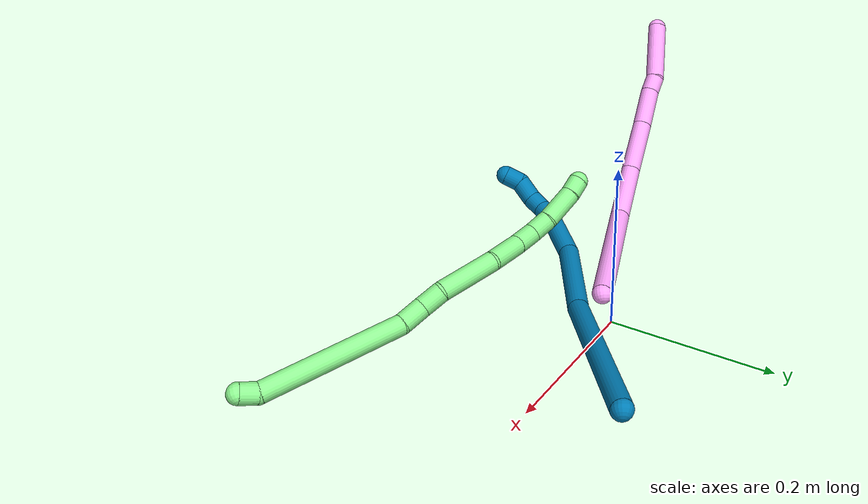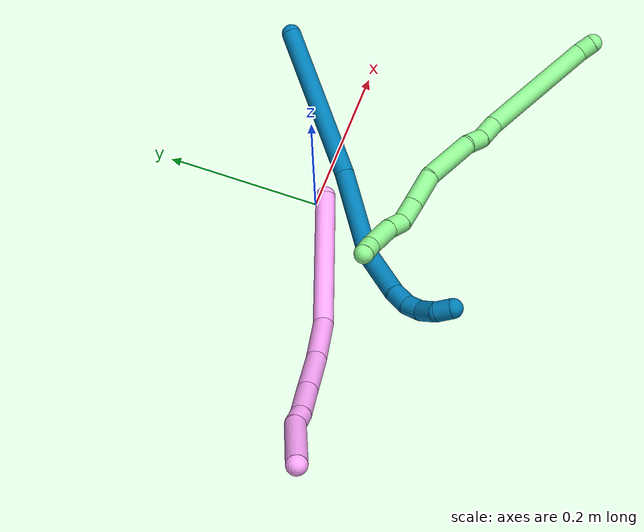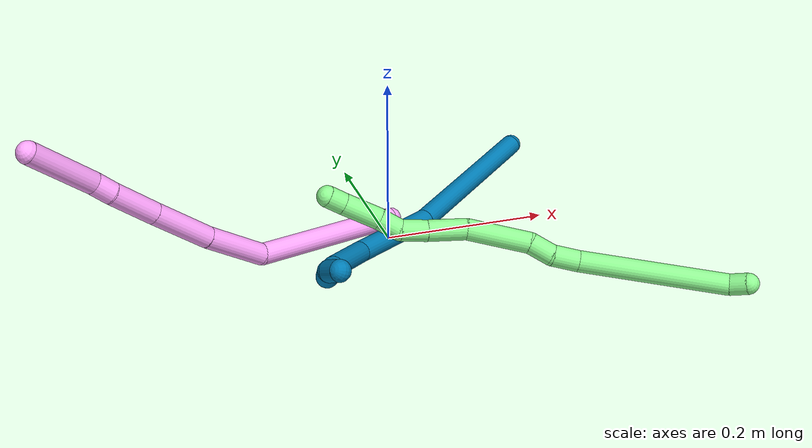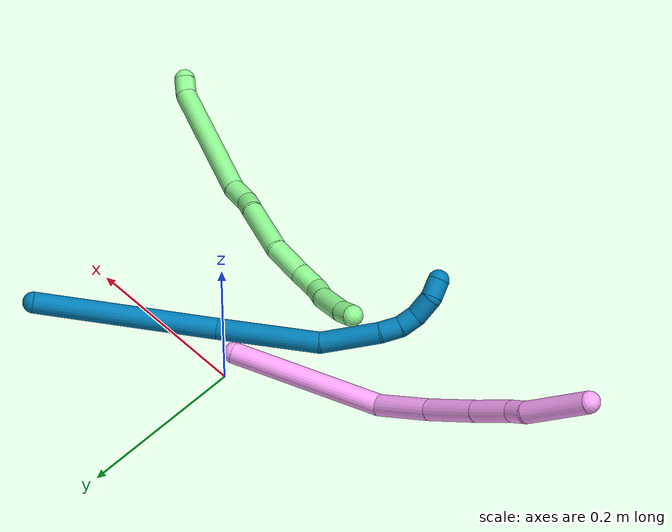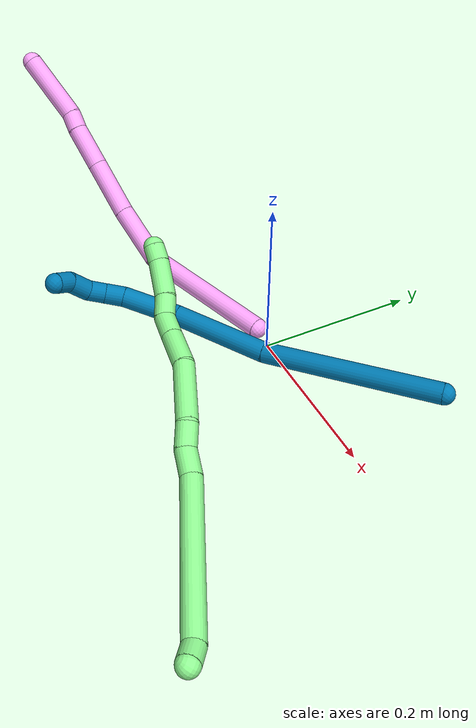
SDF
<sdf version="1.7">
 <world name="default">
  <model name="photoneo_s_sensor">
   <static>1</static>
   <pose>0 0 2 1.57079 1.57079 3.14159</pose>
   <link name="link">
    <inertial><mass>0.1</mass></inertial>
    <sensor name="sensor" type="depth">
     <update_rate>30</update_rate>
     <camera>
      <horizontal_fov>1.22</horizontal_fov>
      <image><width>1920</width><height>1200</height><format>B8G8R8</format></image>
      <clip><near>0.1</near><far>4</far></clip>
      <depth_camera><output>points</output></depth_camera>
     </camera>
     <plugin name="camera_plugin" filename="libgazebo_ros_depth_camera.so">
      <baseline>0.2</baseline>
      <alwaysOn>1</alwaysOn>
      <updateRate>0.0</updateRate>
      <cameraName>camera_ir</cameraName>
      <imageTopicName>/camera/color/image_raw</imageTopicName>
      <cameraInfoTopicName>/camera/color/camera_info</cameraInfoTopicName>
      <depthImageTopicName>/camera/depth/image_raw</depthImageTopicName>
      <depthImageCameraInfoTopicName>/camera/depth/camera_info</depthImageCameraInfoTopicName>
      <pointCloudTopicName>/camera/depth/points</pointCloudTopicName>
      <frameName>fr_optical</frameName>
      <pointCloudCutoff>0.1</pointCloudCutoff>
      <pointCloudCutoffMax>2.0</pointCloudCutoffMax>
      <distortionK1>0</distortionK1>
      <distortionK2>0</distortionK2>
      <distortionK3>0</distortionK3>
      <distortionT1>0</distortionT1>
      <distortionT2>0</distortionT2>
      <CxPrime>0</CxPrime>
      <Cx>0</Cx>
      <Cy>0</Cy>
      <focalLength>0</focalLength>
      <hackBaseline>0</hackBaseline>
     </plugin>
    </sensor>
   </link>
  </model>
  <model name="bin">
   <static>1</static>
   <link name="bottom">
    <collision name="collision-bottom">
     <pose>0 0 -0.01 0 -0 0</pose>
     <geometry><box><size>0.8 0.6 0.02</size></box></geometry>
     <surface>
      <friction><ode><mu>100</mu><mu2>100</mu2></ode></friction>
      <contact><collide_bitmask>65535</collide_bitmask></contact>
     </surface>
    </collision>
   </link>
   <link name="west_wall">
    <collision name="collision-west_wall">
     <pose>-0.41 0 0.1 0 -0 0</pose>
     <geometry><box><size>0.02 0.6 0.2</size></box></geometry>
     <surface>
      <friction><ode><mu>100</mu><mu2>100</mu2></ode></friction>
      <contact><collide_bitmask>65535</collide_bitmask></contact>
     </surface>
    </collision>
   </link>
   <link name="east_wall">
    <collision name="collision-east_wall">
     <pose>0.41 0 0.1 0 -0 0</pose>
     <geometry><box><size>0.02 0.6 0.2</size></box></geometry>
     <surface>
      <friction><ode><mu>100</mu><mu2>100</mu2></ode></friction>
      <contact><collide_bitmask>65535</collide_bitmask></contact>
     </surface>
    </collision>
   </link>
   <link name="south_wall">
    <collision name="collision-south_wall">
     <pose>0 -0.31 0.1 0 -0 0</pose>
     <geometry><box><size>0.8 0.02 0.2</size></box></geometry>
     <surface>
      <friction><ode><mu>100</mu><mu2>100</mu2></ode></friction>
      <contact><collide_bitmask>65535</collide_bitmask></contact>
     </surface>
    </collision>
   </link>
   <link name="north_wall">
    <collision name="collision-north_wall">
     <pose>0 0.31 0.1 0 -0 0</pose>
     <geometry><box><size>0.8 0.02 0.2</size></box></geometry>
     <surface>
      <friction><ode><mu>100</mu><mu2>100</mu2></ode></friction>
      <contact><collide_bitmask>65535</collide_bitmask></contact>
     </surface>
    </collision>
   </link>
  </model>
  <model name="4">
   <static>0</static>
   <link name="4">
    <collision name="collision-cylinder-e_1_1_4">
     <pose>-0.059046 -0.03296 0.061864 0.489532 -0.700036 -0.181857</pose>
     <geometry><cylinder><radius>0.0125</radius><length>0.183303</length></cylinder></geometry>
     <surface>
      <friction><ode><mu>1.16</mu><mu2>1.16</mu2><slip1>0</slip1><slip2>0</slip2></ode></friction>
      <contact><ode><kp>1e+06</kp><kd>1</kd><max_vel>0</max_vel><min_depth>0.001</min_depth></ode></contact>
     </surface>
    </collision>
    <visual name="visual-cylinder-e_1_1_4">
     <pose>-0.059046 -0.03296 0.061864 0.489532 -0.700036 -0.181857</pose>
     <geometry><cylinder><radius>0.0125</radius><length>0.183303</length></cylinder></geometry>
     <material><ambient>1 0.65098 0.996078 1</ambient></material>
    </visual>
    <collision name="collision-cylinder-e_2_4_5">
     <pose>-0.134611 -0.064598 0.157959 -0.038619 -0.449322 0.008826</pose>
     <geometry><cylinder><radius>0.0125</radius><length>0.076062</length></cylinder></geometry>
     <surface>
      <friction><ode><mu>1.16</mu><mu2>1.16</mu2><slip1>0</slip1><slip2>0</slip2></ode></friction>
      <contact><ode><kp>1e+06</kp><kd>1</kd><max_vel>0</max_vel><min_depth>0.001</min_depth></ode></contact>
     </surface>
    </collision>
    <visual name="visual-cylinder-e_2_4_5">
     <pose>-0.134611 -0.064598 0.157959 -0.038619 -0.449322 0.008826</pose>
     <geometry><cylinder><radius>0.0125</radius><length>0.076062</length></cylinder></geometry>
     <material><ambient>1 0.65098 0.996078 1</ambient></material>
    </visual>
    <collision name="collision-cylinder-e_3_5_6">
     <pose>-0.165321 -0.058872 0.225776 -0.130377 -0.396721 0.026242</pose>
     <geometry><cylinder><radius>0.0125</radius><length>0.073453</length></cylinder></geometry>
     <surface>
      <friction><ode><mu>1.16</mu><mu2>1.16</mu2><slip1>0</slip1><slip2>0</slip2></ode></friction>
      <contact><ode><kp>1e+06</kp><kd>1</kd><max_vel>0</max_vel><min_depth>0.001</min_depth></ode></contact>
     </surface>
    </collision>
    <visual name="visual-cylinder-e_3_5_6">
     <pose>-0.165321 -0.058872 0.225776 -0.130377 -0.396721 0.026242</pose>
     <geometry><cylinder><radius>0.0125</radius><length>0.073453</length></cylinder></geometry>
     <material><ambient>1 0.65098 0.996078 1</ambient></material>
    </visual>
    <collision name="collision-cylinder-e_4_6_7">
     <pose>-0.189696 -0.051015 0.285163 -0.133055 -0.372938 0.025138</pose>
     <geometry><cylinder><radius>0.0125</radius><length>0.055903</length></cylinder></geometry>
     <surface>
      <friction><ode><mu>1.16</mu><mu2>1.16</mu2><slip1>0</slip1><slip2>0</slip2></ode></friction>
      <contact><ode><kp>1e+06</kp><kd>1</kd><max_vel>0</max_vel><min_depth>0.001</min_depth></ode></contact>
     </surface>
    </collision>
    <visual name="visual-cylinder-e_4_6_7">
     <pose>-0.189696 -0.051015 0.285163 -0.133055 -0.372938 0.025138</pose>
     <geometry><cylinder><radius>0.0125</radius><length>0.055903</length></cylinder></geometry>
     <material><ambient>1 0.65098 0.996078 1</ambient></material>
    </visual>
    <collision name="collision-cylinder-e_5_7_8">
     <pose>-0.204716 -0.044726 0.321511 -0.262614 -0.416756 0.055836</pose>
     <geometry><cylinder><radius>0.0125</radius><length>0.023889</length></cylinder></geometry>
     <surface>
      <friction><ode><mu>1.16</mu><mu2>1.16</mu2><slip1>0</slip1><slip2>0</slip2></ode></friction>
      <contact><ode><kp>1e+06</kp><kd>1</kd><max_vel>0</max_vel><min_depth>0.001</min_depth></ode></contact>
     </surface>
    </collision>
    <visual name="visual-cylinder-e_5_7_8">
     <pose>-0.204716 -0.044726 0.321511 -0.262614 -0.416756 0.055836</pose>
     <geometry><cylinder><radius>0.0125</radius><length>0.023889</length></cylinder></geometry>
     <material><ambient>1 0.65098 0.996078 1</ambient></material>
    </visual>
    <collision name="collision-cylinder-e_6_8_2">
     <pose>-0.220714 -0.040903 0.374292 -0.023372 -0.258335 0.003036</pose>
     <geometry><cylinder><radius>0.0125</radius><length>0.087389</length></cylinder></geometry>
     <surface>
      <friction><ode><mu>1.16</mu><mu2>1.16</mu2><slip1>0</slip1><slip2>0</slip2></ode></friction>
      <contact><ode><kp>1e+06</kp><kd>1</kd><max_vel>0</max_vel><min_depth>0.001</min_depth></ode></contact>
     </surface>
    </collision>
    <visual name="visual-cylinder-e_6_8_2">
     <pose>-0.220714 -0.040903 0.374292 -0.023372 -0.258335 0.003036</pose>
     <geometry><cylinder><radius>0.0125</radius><length>0.087389</length></cylinder></geometry>
     <material><ambient>1 0.65098 0.996078 1</ambient></material>
    </visual>
    <collision name="collision-sphere-2">
     <pose>-0.231876 -0.039916 0.416525 0 -0 0</pose>
     <geometry><sphere><radius>0.0125</radius></sphere></geometry>
     <surface>
      <friction><ode><mu>1.16</mu><mu2>1.16</mu2><slip1>0</slip1><slip2>0</slip2></ode></friction>
      <contact><ode><kp>1e+06</kp><kd>1</kd><max_vel>0</max_vel><min_depth>0.001</min_depth></ode></contact>
     </surface>
    </collision>
    <visual name="visual-sphere-2">
     <pose>-0.231876 -0.039916 0.416525 0 -0 0</pose>
     <geometry><sphere><radius>0.0125</radius></sphere></geometry>
     <material><ambient>1 0.65098 0.996078 1</ambient></material>
    </visual>
    <collision name="collision-sphere-4">
     <pose>-0.118092 -0.065921 0.123728 0 -0 0</pose>
     <geometry><sphere><radius>0.0125</radius></sphere></geometry>
     <surface>
      <friction><ode><mu>1.16</mu><mu2>1.16</mu2><slip1>0</slip1><slip2>0</slip2></ode></friction>
      <contact><ode><kp>1e+06</kp><kd>1</kd><max_vel>0</max_vel><min_depth>0.001</min_depth></ode></contact>
     </surface>
    </collision>
    <visual name="visual-sphere-4">
     <pose>-0.118092 -0.065921 0.123728 0 -0 0</pose>
     <geometry><sphere><radius>0.0125</radius></sphere></geometry>
     <material><ambient>1 0.65098 0.996078 1</ambient></material>
    </visual>
    <collision name="collision-sphere-1">
     <geometry><sphere><radius>0.0125</radius></sphere></geometry>
     <surface>
      <friction><ode><mu>1.16</mu><mu2>1.16</mu2><slip1>0</slip1><slip2>0</slip2></ode></friction>
      <contact><ode><kp>1e+06</kp><kd>1</kd><max_vel>0</max_vel><min_depth>0.001</min_depth></ode></contact>
     </surface>
    </collision>
    <visual name="visual-sphere-1">
     <geometry><sphere><radius>0.0125</radius></sphere></geometry>
     <material><ambient>1 0.65098 0.996078 1</ambient></material>
    </visual>
    <collision name="collision-sphere-8">
     <pose>-0.209551 -0.04189 0.332059 0 -0 0</pose>
     <geometry><sphere><radius>0.0125</radius></sphere></geometry>
     <surface>
      <friction><ode><mu>1.16</mu><mu2>1.16</mu2><slip1>0</slip1><slip2>0</slip2></ode></friction>
      <contact><ode><kp>1e+06</kp><kd>1</kd><max_vel>0</max_vel><min_depth>0.001</min_depth></ode></contact>
     </surface>
    </collision>
    <visual name="visual-sphere-8">
     <pose>-0.209551 -0.04189 0.332059 0 -0 0</pose>
     <geometry><sphere><radius>0.0125</radius></sphere></geometry>
     <material><ambient>1 0.65098 0.996078 1</ambient></material>
    </visual>
    <collision name="collision-sphere-5">
     <pose>-0.15113 -0.063276 0.19219 0 -0 0</pose>
     <geometry><sphere><radius>0.0125</radius></sphere></geometry>
     <surface>
      <friction><ode><mu>1.16</mu><mu2>1.16</mu2><slip1>0</slip1><slip2>0</slip2></ode></friction>
      <contact><ode><kp>1e+06</kp><kd>1</kd><max_vel>0</max_vel><min_depth>0.001</min_depth></ode></contact>
     </surface>
    </collision>
    <visual name="visual-sphere-5">
     <pose>-0.15113 -0.063276 0.19219 0 -0 0</pose>
     <geometry><sphere><radius>0.0125</radius></sphere></geometry>
     <material><ambient>1 0.65098 0.996078 1</ambient></material>
    </visual>
    <collision name="collision-sphere-6">
     <pose>-0.179512 -0.054468 0.259363 0 -0 0</pose>
     <geometry><sphere><radius>0.0125</radius></sphere></geometry>
     <surface>
      <friction><ode><mu>1.16</mu><mu2>1.16</mu2><slip1>0</slip1><slip2>0</slip2></ode></friction>
      <contact><ode><kp>1e+06</kp><kd>1</kd><max_vel>0</max_vel><min_depth>0.001</min_depth></ode></contact>
     </surface>
    </collision>
    <visual name="visual-sphere-6">
     <pose>-0.179512 -0.054468 0.259363 0 -0 0</pose>
     <geometry><sphere><radius>0.0125</radius></sphere></geometry>
     <material><ambient>1 0.65098 0.996078 1</ambient></material>
    </visual>
    <collision name="collision-sphere-7">
     <pose>-0.199881 -0.047561 0.310963 0 -0 0</pose>
     <geometry><sphere><radius>0.0125</radius></sphere></geometry>
     <surface>
      <friction><ode><mu>1.16</mu><mu2>1.16</mu2><slip1>0</slip1><slip2>0</slip2></ode></friction>
      <contact><ode><kp>1e+06</kp><kd>1</kd><max_vel>0</max_vel><min_depth>0.001</min_depth></ode></contact>
     </surface>
    </collision>
    <visual name="visual-sphere-7">
     <pose>-0.199881 -0.047561 0.310963 0 -0 0</pose>
     <geometry><sphere><radius>0.0125</radius></sphere></geometry>
     <material><ambient>1 0.65098 0.996078 1</ambient></material>
    </visual>
    <inertial>
     <pose>-0.135977 -0.045549 0.19254 0 -0 0</pose>
     <mass>0.5</mass>
     <inertia>
      <ixx>0.000447</ixx>
      <ixy>0</ixy>
      <ixz>0</ixz>
      <iyy>0.00056</iyy>
      <iyz>0</iyz>
      <izz>0.000598</izz>
     </inertia>
    </inertial>
   </link>
   <pose>-0.001542 -0.014322 0.03437 0.678219 -0.362089 -0.43928</pose>
  </model>
  <model name="9">
   <static>0</static>
   <link name="9">
    <collision name="collision-cylinder-e_1_1_4">
     <pose>-0.017677 -0.056309 0.088949 0.564366 -0.166365 -0.048335</pose>
     <geometry><cylinder><radius>0.0125</radius><length>0.213496</length></cylinder></geometry>
     <surface>
      <friction><ode><mu>1.16</mu><mu2>1.16</mu2><slip1>0</slip1><slip2>0</slip2></ode></friction>
      <contact><ode><kp>1e+06</kp><kd>1</kd><max_vel>0</max_vel><min_depth>0.001</min_depth></ode></contact>
     </surface>
    </collision>
    <visual name="visual-cylinder-e_1_1_4">
     <pose>-0.017677 -0.056309 0.088949 0.564366 -0.166365 -0.048335</pose>
     <geometry><cylinder><radius>0.0125</radius><length>0.213496</length></cylinder></geometry>
     <material><ambient>0 0.490196 0.709804 1</ambient></material>
    </visual>
    <collision name="collision-cylinder-e_2_4_5">
     <pose>-0.046083 -0.13515 0.233016 0.388054 -0.178261 -0.035118</pose>
     <geometry><cylinder><radius>0.0125</radius><length>0.121008</length></cylinder></geometry>
     <surface>
      <friction><ode><mu>1.16</mu><mu2>1.16</mu2><slip1>0</slip1><slip2>0</slip2></ode></friction>
      <contact><ode><kp>1e+06</kp><kd>1</kd><max_vel>0</max_vel><min_depth>0.001</min_depth></ode></contact>
     </surface>
    </collision>
    <visual name="visual-cylinder-e_2_4_5">
     <pose>-0.046083 -0.13515 0.233016 0.388054 -0.178261 -0.035118</pose>
     <geometry><cylinder><radius>0.0125</radius><length>0.121008</length></cylinder></geometry>
     <material><ambient>0 0.490196 0.709804 1</ambient></material>
    </visual>
    <collision name="collision-cylinder-e_3_5_6">
     <pose>-0.052684 -0.170281 0.320446 0.371818 0.118448 0.022303</pose>
     <geometry><cylinder><radius>0.0125</radius><length>0.069854</length></cylinder></geometry>
     <surface>
      <friction><ode><mu>1.16</mu><mu2>1.16</mu2><slip1>0</slip1><slip2>0</slip2></ode></friction>
      <contact><ode><kp>1e+06</kp><kd>1</kd><max_vel>0</max_vel><min_depth>0.001</min_depth></ode></contact>
     </surface>
    </collision>
    <visual name="visual-cylinder-e_3_5_6">
     <pose>-0.052684 -0.170281 0.320446 0.371818 0.118448 0.022303</pose>
     <geometry><cylinder><radius>0.0125</radius><length>0.069854</length></cylinder></geometry>
     <material><ambient>0 0.490196 0.709804 1</ambient></material>
    </visual>
    <collision name="collision-cylinder-e_4_6_7">
     <pose>-0.045424 -0.188552 0.3631 0.501545 0.259638 0.066861</pose>
     <geometry><cylinder><radius>0.0125</radius><length>0.024407</length></cylinder></geometry>
     <surface>
      <friction><ode><mu>1.16</mu><mu2>1.16</mu2><slip1>0</slip1><slip2>0</slip2></ode></friction>
      <contact><ode><kp>1e+06</kp><kd>1</kd><max_vel>0</max_vel><min_depth>0.001</min_depth></ode></contact>
     </surface>
    </collision>
    <visual name="visual-cylinder-e_4_6_7">
     <pose>-0.045424 -0.188552 0.3631 0.501545 0.259638 0.066861</pose>
     <geometry><cylinder><radius>0.0125</radius><length>0.024407</length></cylinder></geometry>
     <material><ambient>0 0.490196 0.709804 1</ambient></material>
    </visual>
    <collision name="collision-cylinder-e_5_7_8">
     <pose>-0.036355 -0.197943 0.381877 0.415419 0.572058 0.123801</pose>
     <geometry><cylinder><radius>0.0125</radius><length>0.02193</length></cylinder></geometry>
     <surface>
      <friction><ode><mu>1.16</mu><mu2>1.16</mu2><slip1>0</slip1><slip2>0</slip2></ode></friction>
      <contact><ode><kp>1e+06</kp><kd>1</kd><max_vel>0</max_vel><min_depth>0.001</min_depth></ode></contact>
     </surface>
    </collision>
    <visual name="visual-cylinder-e_5_7_8">
     <pose>-0.036355 -0.197943 0.381877 0.415419 0.572058 0.123801</pose>
     <geometry><cylinder><radius>0.0125</radius><length>0.02193</length></cylinder></geometry>
     <material><ambient>0 0.490196 0.709804 1</ambient></material>
    </visual>
    <collision name="collision-cylinder-e_6_8_9">
     <pose>-0.02112 -0.201724 0.400325 0.005958 0.748486 0.00234</pose>
     <geometry><cylinder><radius>0.0125</radius><length>0.027329</length></cylinder></geometry>
     <surface>
      <friction><ode><mu>1.16</mu><mu2>1.16</mu2><slip1>0</slip1><slip2>0</slip2></ode></friction>
      <contact><ode><kp>1e+06</kp><kd>1</kd><max_vel>0</max_vel><min_depth>0.001</min_depth></ode></contact>
     </surface>
    </collision>
    <visual name="visual-cylinder-e_6_8_9">
     <pose>-0.02112 -0.201724 0.400325 0.005958 0.748486 0.00234</pose>
     <geometry><cylinder><radius>0.0125</radius><length>0.027329</length></cylinder></geometry>
     <material><ambient>0 0.490196 0.709804 1</ambient></material>
    </visual>
    <collision name="collision-cylinder-e_7_9_2">
     <pose>-0.001796 -0.20438 0.414011 0.615192 1.14891 0.405595</pose>
     <geometry><cylinder><radius>0.0125</radius><length>0.021976</length></cylinder></geometry>
     <surface>
      <friction><ode><mu>1.16</mu><mu2>1.16</mu2><slip1>0</slip1><slip2>0</slip2></ode></friction>
      <contact><ode><kp>1e+06</kp><kd>1</kd><max_vel>0</max_vel><min_depth>0.001</min_depth></ode></contact>
     </surface>
    </collision>
    <visual name="visual-cylinder-e_7_9_2">
     <pose>-0.001796 -0.20438 0.414011 0.615192 1.14891 0.405595</pose>
     <geometry><cylinder><radius>0.0125</radius><length>0.021976</length></cylinder></geometry>
     <material><ambient>0 0.490196 0.709804 1</ambient></material>
    </visual>
    <collision name="collision-sphere-2">
     <pose>0.008228 -0.206976 0.417686 0 -0 0</pose>
     <geometry><sphere><radius>0.0125</radius></sphere></geometry>
     <surface>
      <friction><ode><mu>1.16</mu><mu2>1.16</mu2><slip1>0</slip1><slip2>0</slip2></ode></friction>
      <contact><ode><kp>1e+06</kp><kd>1</kd><max_vel>0</max_vel><min_depth>0.001</min_depth></ode></contact>
     </surface>
    </collision>
    <visual name="visual-sphere-2">
     <pose>0.008228 -0.206976 0.417686 0 -0 0</pose>
     <geometry><sphere><radius>0.0125</radius></sphere></geometry>
     <material><ambient>0 0.490196 0.709804 1</ambient></material>
    </visual>
    <collision name="collision-sphere-9">
     <pose>-0.01182 -0.201783 0.410337 0 -0 0</pose>
     <geometry><sphere><radius>0.0125</radius></sphere></geometry>
     <surface>
      <friction><ode><mu>1.16</mu><mu2>1.16</mu2><slip1>0</slip1><slip2>0</slip2></ode></friction>
      <contact><ode><kp>1e+06</kp><kd>1</kd><max_vel>0</max_vel><min_depth>0.001</min_depth></ode></contact>
     </surface>
    </collision>
    <visual name="visual-sphere-9">
     <pose>-0.01182 -0.201783 0.410337 0 -0 0</pose>
     <geometry><sphere><radius>0.0125</radius></sphere></geometry>
     <material><ambient>0 0.490196 0.709804 1</ambient></material>
    </visual>
    <collision name="collision-sphere-4">
     <pose>-0.035355 -0.112618 0.177898 0 -0 0</pose>
     <geometry><sphere><radius>0.0125</radius></sphere></geometry>
     <surface>
      <friction><ode><mu>1.16</mu><mu2>1.16</mu2><slip1>0</slip1><slip2>0</slip2></ode></friction>
      <contact><ode><kp>1e+06</kp><kd>1</kd><max_vel>0</max_vel><min_depth>0.001</min_depth></ode></contact>
     </surface>
    </collision>
    <visual name="visual-sphere-4">
     <pose>-0.035355 -0.112618 0.177898 0 -0 0</pose>
     <geometry><sphere><radius>0.0125</radius></sphere></geometry>
     <material><ambient>0 0.490196 0.709804 1</ambient></material>
    </visual>
    <collision name="collision-sphere-1">
     <geometry><sphere><radius>0.0125</radius></sphere></geometry>
     <surface>
      <friction><ode><mu>1.16</mu><mu2>1.16</mu2><slip1>0</slip1><slip2>0</slip2></ode></friction>
      <contact><ode><kp>1e+06</kp><kd>1</kd><max_vel>0</max_vel><min_depth>0.001</min_depth></ode></contact>
     </surface>
    </collision>
    <visual name="visual-sphere-1">
     <geometry><sphere><radius>0.0125</radius></sphere></geometry>
     <material><ambient>0 0.490196 0.709804 1</ambient></material>
    </visual>
    <collision name="collision-sphere-8">
     <pose>-0.030419 -0.201664 0.390313 0 -0 0</pose>
     <geometry><sphere><radius>0.0125</radius></sphere></geometry>
     <surface>
      <friction><ode><mu>1.16</mu><mu2>1.16</mu2><slip1>0</slip1><slip2>0</slip2></ode></friction>
      <contact><ode><kp>1e+06</kp><kd>1</kd><max_vel>0</max_vel><min_depth>0.001</min_depth></ode></contact>
     </surface>
    </collision>
    <visual name="visual-sphere-8">
     <pose>-0.030419 -0.201664 0.390313 0 -0 0</pose>
     <geometry><sphere><radius>0.0125</radius></sphere></geometry>
     <material><ambient>0 0.490196 0.709804 1</ambient></material>
    </visual>
    <collision name="collision-sphere-5">
     <pose>-0.056812 -0.157681 0.288134 0 -0 0</pose>
     <geometry><sphere><radius>0.0125</radius></sphere></geometry>
     <surface>
      <friction><ode><mu>1.16</mu><mu2>1.16</mu2><slip1>0</slip1><slip2>0</slip2></ode></friction>
      <contact><ode><kp>1e+06</kp><kd>1</kd><max_vel>0</max_vel><min_depth>0.001</min_depth></ode></contact>
     </surface>
    </collision>
    <visual name="visual-sphere-5">
     <pose>-0.056812 -0.157681 0.288134 0 -0 0</pose>
     <geometry><sphere><radius>0.0125</radius></sphere></geometry>
     <material><ambient>0 0.490196 0.709804 1</ambient></material>
    </visual>
    <collision name="collision-sphere-6">
     <pose>-0.048557 -0.182881 0.352759 0 -0 0</pose>
     <geometry><sphere><radius>0.0125</radius></sphere></geometry>
     <surface>
      <friction><ode><mu>1.16</mu><mu2>1.16</mu2><slip1>0</slip1><slip2>0</slip2></ode></friction>
      <contact><ode><kp>1e+06</kp><kd>1</kd><max_vel>0</max_vel><min_depth>0.001</min_depth></ode></contact>
     </surface>
    </collision>
    <visual name="visual-sphere-6">
     <pose>-0.048557 -0.182881 0.352759 0 -0 0</pose>
     <geometry><sphere><radius>0.0125</radius></sphere></geometry>
     <material><ambient>0 0.490196 0.709804 1</ambient></material>
    </visual>
    <collision name="collision-sphere-7">
     <pose>-0.042291 -0.194223 0.373442 0 -0 0</pose>
     <geometry><sphere><radius>0.0125</radius></sphere></geometry>
     <surface>
      <friction><ode><mu>1.16</mu><mu2>1.16</mu2><slip1>0</slip1><slip2>0</slip2></ode></friction>
      <contact><ode><kp>1e+06</kp><kd>1</kd><max_vel>0</max_vel><min_depth>0.001</min_depth></ode></contact>
     </surface>
    </collision>
    <visual name="visual-sphere-7">
     <pose>-0.042291 -0.194223 0.373442 0 -0 0</pose>
     <geometry><sphere><radius>0.0125</radius></sphere></geometry>
     <material><ambient>0 0.490196 0.709804 1</ambient></material>
    </visual>
    <inertial>
     <pose>-0.031106 -0.118436 0.213694 0 -0 0</pose>
     <mass>0.5</mass>
     <inertia>
      <ixx>0.000952</ixx>
      <ixy>0</ixy>
      <ixz>0</ixz>
      <iyy>0.000814</iyy>
      <iyz>0</iyz>
      <izz>0.000689</izz>
     </inertia>
    </inertial>
   </link>
   <pose>0.202646 0.109104 0.051986 1.02517 -0.503263 -0.747682</pose>
  </model>
  <model name="13">
   <static>0</static>
   <link name="13">
    <collision name="collision-cylinder-e_1_1_4">
     <pose>-0.009256 0.00516 0.002078 -1.18788 -1.02962 0.729784</pose>
     <geometry><cylinder><radius>0.0125</radius><length>0.021597</length></cylinder></geometry>
     <surface>
      <friction><ode><mu>1.16</mu><mu2>1.16</mu2><slip1>0</slip1><slip2>0</slip2></ode></friction>
      <contact><ode><kp>1e+06</kp><kd>1</kd><max_vel>0</max_vel><min_depth>0.001</min_depth></ode></contact>
     </surface>
    </collision>
    <visual name="visual-cylinder-e_1_1_4">
     <pose>-0.009256 0.00516 0.002078 -1.18788 -1.02962 0.729784</pose>
     <geometry><cylinder><radius>0.0125</radius><length>0.021597</length></cylinder></geometry>
     <material><ambient>0.564706 0.984314 0.572549 1</ambient></material>
    </visual>
    <collision name="collision-cylinder-e_2_4_5">
     <pose>-0.097601 0.040486 -0.015214 -2.14163 -1.14522 1.73563</pose>
     <geometry><cylinder><radius>0.0125</radius><length>0.173672</length></cylinder></geometry>
     <surface>
      <friction><ode><mu>1.16</mu><mu2>1.16</mu2><slip1>0</slip1><slip2>0</slip2></ode></friction>
      <contact><ode><kp>1e+06</kp><kd>1</kd><max_vel>0</max_vel><min_depth>0.001</min_depth></ode></contact>
     </surface>
    </collision>
    <visual name="visual-cylinder-e_2_4_5">
     <pose>-0.097601 0.040486 -0.015214 -2.14163 -1.14522 1.73563</pose>
     <geometry><cylinder><radius>0.0125</radius><length>0.173672</length></cylinder></geometry>
     <material><ambient>0.564706 0.984314 0.572549 1</ambient></material>
    </visual>
    <collision name="collision-cylinder-e_3_5_6">
     <pose>-0.190132 0.075394 -0.041752 -2.55705 -1.00189 2.13661</pose>
     <geometry><cylinder><radius>0.0125</radius><length>0.031907</length></cylinder></geometry>
     <surface>
      <friction><ode><mu>1.16</mu><mu2>1.16</mu2><slip1>0</slip1><slip2>0</slip2></ode></friction>
      <contact><ode><kp>1e+06</kp><kd>1</kd><max_vel>0</max_vel><min_depth>0.001</min_depth></ode></contact>
     </surface>
    </collision>
    <visual name="visual-cylinder-e_3_5_6">
     <pose>-0.190132 0.075394 -0.041752 -2.55705 -1.00189 2.13661</pose>
     <geometry><cylinder><radius>0.0125</radius><length>0.031907</length></cylinder></geometry>
     <material><ambient>0.564706 0.984314 0.572549 1</ambient></material>
    </visual>
    <collision name="collision-cylinder-e_4_6_7">
     <pose>-0.216958 0.080175 -0.054088 -3.1341 -1.20229 3.13067</pose>
     <geometry><cylinder><radius>0.0125</radius><length>0.028697</length></cylinder></geometry>
     <surface>
      <friction><ode><mu>1.16</mu><mu2>1.16</mu2><slip1>0</slip1><slip2>0</slip2></ode></friction>
      <contact><ode><kp>1e+06</kp><kd>1</kd><max_vel>0</max_vel><min_depth>0.001</min_depth></ode></contact>
     </surface>
    </collision>
    <visual name="visual-cylinder-e_4_6_7">
     <pose>-0.216958 0.080175 -0.054088 -3.1341 -1.20229 3.13067</pose>
     <geometry><cylinder><radius>0.0125</radius><length>0.028697</length></cylinder></geometry>
     <material><ambient>0.564706 0.984314 0.572549 1</ambient></material>
    </visual>
    <collision name="collision-cylinder-e_5_7_8">
     <pose>-0.263992 0.091199 -0.070451 -2.36563 -1.13462 2.00096</pose>
     <geometry><cylinder><radius>0.0125</radius><length>0.074249</length></cylinder></geometry>
     <surface>
      <friction><ode><mu>1.16</mu><mu2>1.16</mu2><slip1>0</slip1><slip2>0</slip2></ode></friction>
      <contact><ode><kp>1e+06</kp><kd>1</kd><max_vel>0</max_vel><min_depth>0.001</min_depth></ode></contact>
     </surface>
    </collision>
    <visual name="visual-cylinder-e_5_7_8">
     <pose>-0.263992 0.091199 -0.070451 -2.36563 -1.13462 2.00096</pose>
     <geometry><cylinder><radius>0.0125</radius><length>0.074249</length></cylinder></geometry>
     <material><ambient>0.564706 0.984314 0.572549 1</ambient></material>
    </visual>
    <collision name="collision-cylinder-e_6_8_9">
     <pose>-0.314957 0.114298 -0.090727 -2.21412 -0.852372 1.47425</pose>
     <geometry><cylinder><radius>0.0125</radius><length>0.046004</length></cylinder></geometry>
     <surface>
      <friction><ode><mu>1.16</mu><mu2>1.16</mu2><slip1>0</slip1><slip2>0</slip2></ode></friction>
      <contact><ode><kp>1e+06</kp><kd>1</kd><max_vel>0</max_vel><min_depth>0.001</min_depth></ode></contact>
     </surface>
    </collision>
    <visual name="visual-cylinder-e_6_8_9">
     <pose>-0.314957 0.114298 -0.090727 -2.21412 -0.852372 1.47425</pose>
     <geometry><cylinder><radius>0.0125</radius><length>0.046004</length></cylinder></geometry>
     <material><ambient>0.564706 0.984314 0.572549 1</ambient></material>
    </visual>
    <collision name="collision-cylinder-e_7_9_10">
     <pose>-0.344086 0.133834 -0.106512 -2.30531 -0.868254 1.61326</pose>
     <geometry><cylinder><radius>0.0125</radius><length>0.030952</length></cylinder></geometry>
     <surface>
      <friction><ode><mu>1.16</mu><mu2>1.16</mu2><slip1>0</slip1><slip2>0</slip2></ode></friction>
      <contact><ode><kp>1e+06</kp><kd>1</kd><max_vel>0</max_vel><min_depth>0.001</min_depth></ode></contact>
     </surface>
    </collision>
    <visual name="visual-cylinder-e_7_9_10">
     <pose>-0.344086 0.133834 -0.106512 -2.30531 -0.868254 1.61326</pose>
     <geometry><cylinder><radius>0.0125</radius><length>0.030952</length></cylinder></geometry>
     <material><ambient>0.564706 0.984314 0.572549 1</ambient></material>
    </visual>
    <collision name="collision-cylinder-e_8_10_11">
     <pose>-0.368245 0.14149 -0.118383 -3.09625 -1.17396 3.07345</pose>
     <geometry><cylinder><radius>0.0125</radius><length>0.026775</length></cylinder></geometry>
     <surface>
      <friction><ode><mu>1.16</mu><mu2>1.16</mu2><slip1>0</slip1><slip2>0</slip2></ode></friction>
      <contact><ode><kp>1e+06</kp><kd>1</kd><max_vel>0</max_vel><min_depth>0.001</min_depth></ode></contact>
     </surface>
    </collision>
    <visual name="visual-cylinder-e_8_10_11">
     <pose>-0.368245 0.14149 -0.118383 -3.09625 -1.17396 3.07345</pose>
     <geometry><cylinder><radius>0.0125</radius><length>0.026775</length></cylinder></geometry>
     <material><ambient>0.564706 0.984314 0.572549 1</ambient></material>
    </visual>
    <collision name="collision-cylinder-e_9_11_12">
     <pose>-0.39943 0.144508 -0.135774 -2.91769 -0.98365 2.7279</pose>
     <geometry><cylinder><radius>0.0125</radius><length>0.045255</length></cylinder></geometry>
     <surface>
      <friction><ode><mu>1.16</mu><mu2>1.16</mu2><slip1>0</slip1><slip2>0</slip2></ode></friction>
      <contact><ode><kp>1e+06</kp><kd>1</kd><max_vel>0</max_vel><min_depth>0.001</min_depth></ode></contact>
     </surface>
    </collision>
    <visual name="visual-cylinder-e_9_11_12">
     <pose>-0.39943 0.144508 -0.135774 -2.91769 -0.98365 2.7279</pose>
     <geometry><cylinder><radius>0.0125</radius><length>0.045255</length></cylinder></geometry>
     <material><ambient>0.564706 0.984314 0.572549 1</ambient></material>
    </visual>
    <collision name="collision-cylinder-e_10_12_2">
     <pose>-0.426065 0.148328 -0.154869 -2.99179 -0.842782 2.80983</pose>
     <geometry><cylinder><radius>0.0125</radius><length>0.020891</length></cylinder></geometry>
     <surface>
      <friction><ode><mu>1.16</mu><mu2>1.16</mu2><slip1>0</slip1><slip2>0</slip2></ode></friction>
      <contact><ode><kp>1e+06</kp><kd>1</kd><max_vel>0</max_vel><min_depth>0.001</min_depth></ode></contact>
     </surface>
    </collision>
    <visual name="visual-cylinder-e_10_12_2">
     <pose>-0.426065 0.148328 -0.154869 -2.99179 -0.842782 2.80983</pose>
     <geometry><cylinder><radius>0.0125</radius><length>0.020891</length></cylinder></geometry>
     <material><ambient>0.564706 0.984314 0.572549 1</ambient></material>
    </visual>
    <collision name="collision-sphere-2">
     <pose>-0.433863 0.149366 -0.161742 0 -0 0</pose>
     <geometry><sphere><radius>0.0125</radius></sphere></geometry>
     <surface>
      <friction><ode><mu>1.16</mu><mu2>1.16</mu2><slip1>0</slip1><slip2>0</slip2></ode></friction>
      <contact><ode><kp>1e+06</kp><kd>1</kd><max_vel>0</max_vel><min_depth>0.001</min_depth></ode></contact>
     </surface>
    </collision>
    <visual name="visual-sphere-2">
     <pose>-0.433863 0.149366 -0.161742 0 -0 0</pose>
     <geometry><sphere><radius>0.0125</radius></sphere></geometry>
     <material><ambient>0.564706 0.984314 0.572549 1</ambient></material>
    </visual>
    <collision name="collision-sphere-12">
     <pose>-0.418268 0.147291 -0.147997 0 -0 0</pose>
     <geometry><sphere><radius>0.0125</radius></sphere></geometry>
     <surface>
      <friction><ode><mu>1.16</mu><mu2>1.16</mu2><slip1>0</slip1><slip2>0</slip2></ode></friction>
      <contact><ode><kp>1e+06</kp><kd>1</kd><max_vel>0</max_vel><min_depth>0.001</min_depth></ode></contact>
     </surface>
    </collision>
    <visual name="visual-sphere-12">
     <pose>-0.418268 0.147291 -0.147997 0 -0 0</pose>
     <geometry><sphere><radius>0.0125</radius></sphere></geometry>
     <material><ambient>0.564706 0.984314 0.572549 1</ambient></material>
    </visual>
    <collision name="collision-sphere-11">
     <pose>-0.380592 0.141724 -0.123552 0 -0 0</pose>
     <geometry><sphere><radius>0.0125</radius></sphere></geometry>
     <surface>
      <friction><ode><mu>1.16</mu><mu2>1.16</mu2><slip1>0</slip1><slip2>0</slip2></ode></friction>
      <contact><ode><kp>1e+06</kp><kd>1</kd><max_vel>0</max_vel><min_depth>0.001</min_depth></ode></contact>
     </surface>
    </collision>
    <visual name="visual-sphere-11">
     <pose>-0.380592 0.141724 -0.123552 0 -0 0</pose>
     <geometry><sphere><radius>0.0125</radius></sphere></geometry>
     <material><ambient>0.564706 0.984314 0.572549 1</ambient></material>
    </visual>
    <collision name="collision-sphere-10">
     <pose>-0.355897 0.141255 -0.113214 0 -0 0</pose>
     <geometry><sphere><radius>0.0125</radius></sphere></geometry>
     <surface>
      <friction><ode><mu>1.16</mu><mu2>1.16</mu2><slip1>0</slip1><slip2>0</slip2></ode></friction>
      <contact><ode><kp>1e+06</kp><kd>1</kd><max_vel>0</max_vel><min_depth>0.001</min_depth></ode></contact>
     </surface>
    </collision>
    <visual name="visual-sphere-10">
     <pose>-0.355897 0.141255 -0.113214 0 -0 0</pose>
     <geometry><sphere><radius>0.0125</radius></sphere></geometry>
     <material><ambient>0.564706 0.984314 0.572549 1</ambient></material>
    </visual>
    <collision name="collision-sphere-9">
     <pose>-0.332275 0.126412 -0.099809 0 -0 0</pose>
     <geometry><sphere><radius>0.0125</radius></sphere></geometry>
     <surface>
      <friction><ode><mu>1.16</mu><mu2>1.16</mu2><slip1>0</slip1><slip2>0</slip2></ode></friction>
      <contact><ode><kp>1e+06</kp><kd>1</kd><max_vel>0</max_vel><min_depth>0.001</min_depth></ode></contact>
     </surface>
    </collision>
    <visual name="visual-sphere-9">
     <pose>-0.332275 0.126412 -0.099809 0 -0 0</pose>
     <geometry><sphere><radius>0.0125</radius></sphere></geometry>
     <material><ambient>0.564706 0.984314 0.572549 1</ambient></material>
    </visual>
    <collision name="collision-sphere-4">
     <pose>-0.018511 0.01032 0.004157 0 -0 0</pose>
     <geometry><sphere><radius>0.0125</radius></sphere></geometry>
     <surface>
      <friction><ode><mu>1.16</mu><mu2>1.16</mu2><slip1>0</slip1><slip2>0</slip2></ode></friction>
      <contact><ode><kp>1e+06</kp><kd>1</kd><max_vel>0</max_vel><min_depth>0.001</min_depth></ode></contact>
     </surface>
    </collision>
    <visual name="visual-sphere-4">
     <pose>-0.018511 0.01032 0.004157 0 -0 0</pose>
     <geometry><sphere><radius>0.0125</radius></sphere></geometry>
     <material><ambient>0.564706 0.984314 0.572549 1</ambient></material>
    </visual>
    <collision name="collision-sphere-1">
     <geometry><sphere><radius>0.0125</radius></sphere></geometry>
     <surface>
      <friction><ode><mu>1.16</mu><mu2>1.16</mu2><slip1>0</slip1><slip2>0</slip2></ode></friction>
      <contact><ode><kp>1e+06</kp><kd>1</kd><max_vel>0</max_vel><min_depth>0.001</min_depth></ode></contact>
     </surface>
    </collision>
    <visual name="visual-sphere-1">
     <geometry><sphere><radius>0.0125</radius></sphere></geometry>
     <material><ambient>0.564706 0.984314 0.572549 1</ambient></material>
    </visual>
    <collision name="collision-sphere-8">
     <pose>-0.29764 0.102185 -0.081645 0 -0 0</pose>
     <geometry><sphere><radius>0.0125</radius></sphere></geometry>
     <surface>
      <friction><ode><mu>1.16</mu><mu2>1.16</mu2><slip1>0</slip1><slip2>0</slip2></ode></friction>
      <contact><ode><kp>1e+06</kp><kd>1</kd><max_vel>0</max_vel><min_depth>0.001</min_depth></ode></contact>
     </surface>
    </collision>
    <visual name="visual-sphere-8">
     <pose>-0.29764 0.102185 -0.081645 0 -0 0</pose>
     <geometry><sphere><radius>0.0125</radius></sphere></geometry>
     <material><ambient>0.564706 0.984314 0.572549 1</ambient></material>
    </visual>
    <collision name="collision-sphere-5">
     <pose>-0.176691 0.070652 -0.034585 0 -0 0</pose>
     <geometry><sphere><radius>0.0125</radius></sphere></geometry>
     <surface>
      <friction><ode><mu>1.16</mu><mu2>1.16</mu2><slip1>0</slip1><slip2>0</slip2></ode></friction>
      <contact><ode><kp>1e+06</kp><kd>1</kd><max_vel>0</max_vel><min_depth>0.001</min_depth></ode></contact>
     </surface>
    </collision>
    <visual name="visual-sphere-5">
     <pose>-0.176691 0.070652 -0.034585 0 -0 0</pose>
     <geometry><sphere><radius>0.0125</radius></sphere></geometry>
     <material><ambient>0.564706 0.984314 0.572549 1</ambient></material>
    </visual>
    <collision name="collision-sphere-6">
     <pose>-0.203573 0.080137 -0.04892 0 -0 0</pose>
     <geometry><sphere><radius>0.0125</radius></sphere></geometry>
     <surface>
      <friction><ode><mu>1.16</mu><mu2>1.16</mu2><slip1>0</slip1><slip2>0</slip2></ode></friction>
      <contact><ode><kp>1e+06</kp><kd>1</kd><max_vel>0</max_vel><min_depth>0.001</min_depth></ode></contact>
     </surface>
    </collision>
    <visual name="visual-sphere-6">
     <pose>-0.203573 0.080137 -0.04892 0 -0 0</pose>
     <geometry><sphere><radius>0.0125</radius></sphere></geometry>
     <material><ambient>0.564706 0.984314 0.572549 1</ambient></material>
    </visual>
    <collision name="collision-sphere-7">
     <pose>-0.230343 0.080214 -0.059256 0 -0 0</pose>
     <geometry><sphere><radius>0.0125</radius></sphere></geometry>
     <surface>
      <friction><ode><mu>1.16</mu><mu2>1.16</mu2><slip1>0</slip1><slip2>0</slip2></ode></friction>
      <contact><ode><kp>1e+06</kp><kd>1</kd><max_vel>0</max_vel><min_depth>0.001</min_depth></ode></contact>
     </surface>
    </collision>
    <visual name="visual-sphere-7">
     <pose>-0.230343 0.080214 -0.059256 0 -0 0</pose>
     <geometry><sphere><radius>0.0125</radius></sphere></geometry>
     <material><ambient>0.564706 0.984314 0.572549 1</ambient></material>
    </visual>
    <inertial>
     <pose>-0.222042 0.082896 -0.061466 0 -0 0</pose>
     <mass>0.5</mass>
     <inertia>
      <ixx>0.00013</ixx>
      <ixy>0</ixy>
      <ixz>0</ixz>
      <iyy>0.000656</iyy>
      <iyz>0</iyz>
      <izz>0.000279</izz>
     </inertia>
    </inertial>
   </link>
   <pose>0.345135 -0.264676 0.016811 -2.25398 0.269315 -0.826826</pose>
  </model>
 </world>
</sdf>
